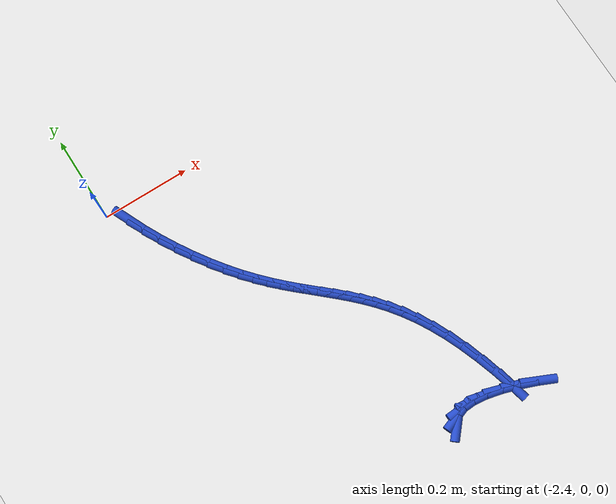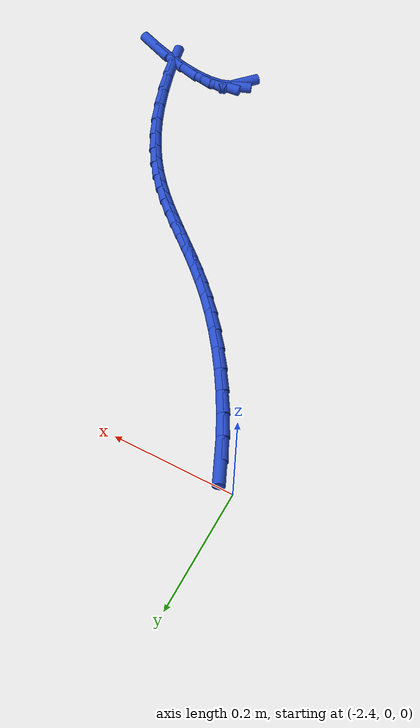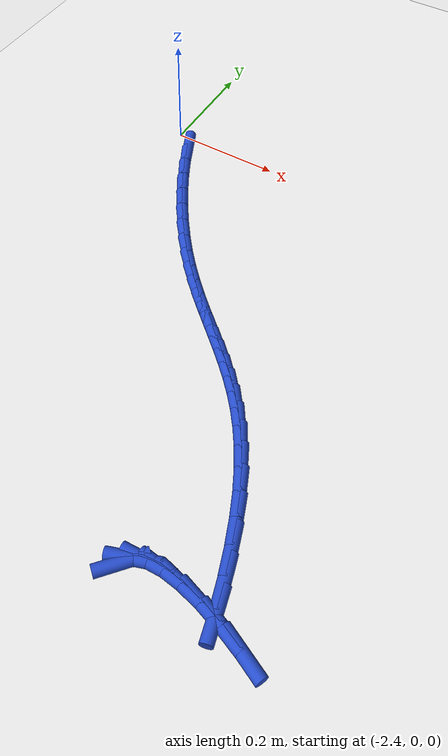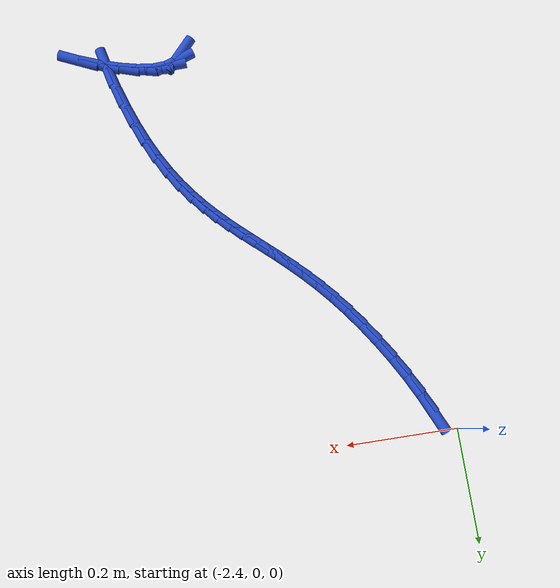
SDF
<sdf version="1.6">
 <world name="default">
  <model name="ground_plane">
   <static>1</static>
   <link name="link">
    <collision name="collision">
     <geometry><plane><normal>0 0 1</normal><size>100 100</size></plane></geometry>
     <surface><friction><ode><mu>100</mu><mu2>50</mu2></ode></friction></surface>
    </collision>
    <visual name="visual">
     <cast_shadows>0</cast_shadows>
     <geometry><plane><normal>0 0 1</normal><size>100 100</size></plane></geometry>
     <material>
      <script><uri>file://media/materials/scripts/gazebo.material</uri><name>Gazebo/WhiteGlow</name></script>
     </material>
    </visual>
   </link>
  </model>
  <model name="line">
   <link name="link_141">
    <pose>-2.361597242103168 -0.03344949519410707 0.01 0 1.57 -1.1474582868357774</pose>
    <collision name="collision">
     <geometry><cylinder><radius>0.01</radius><length>0.08</length></cylinder></geometry>
    </collision>
    <visual name="visual">
     <material>
      <script><name>Gazebo/Blue</name><uri>file://media/materials/scripts/gazebo.material</uri></script>
     </material>
     <geometry><cylinder><radius>0.01</radius><length>0.08</length></cylinder></geometry>
    </visual>
   </link>
   <link name="link_142">
    <pose>-2.3453179037874765 -0.06957905302039295 0.01 0 1.57 -1.1001752725665497</pose>
    <collision name="collision">
     <geometry><cylinder><radius>0.01</radius><length>0.08</length></cylinder></geometry>
    </collision>
    <visual name="visual">
     <material>
      <script><name>Gazebo/Blue</name><uri>file://media/materials/scripts/gazebo.material</uri></script>
     </material>
     <geometry><cylinder><radius>0.01</radius><length>0.08</length></cylinder></geometry>
    </visual>
   </link>
   <link name="link_143">
    <pose>-2.327036588795942 -0.10551302193618992 0.01 0 1.57 -1.0573141743358325</pose>
    <collision name="collision">
     <geometry><cylinder><radius>0.01</radius><length>0.08</length></cylinder></geometry>
    </collision>
    <visual name="visual">
     <material>
      <script><name>Gazebo/Blue</name><uri>file://media/materials/scripts/gazebo.material</uri></script>
     </material>
     <geometry><cylinder><radius>0.01</radius><length>0.08</length></cylinder></geometry>
    </visual>
   </link>
   <link name="link_144">
    <pose>-2.3071366077376902 -0.1408004733244182 0.01 0 1.57 -1.017121418431173</pose>
    <collision name="collision">
     <geometry><cylinder><radius>0.01</radius><length>0.08</length></cylinder></geometry>
    </collision>
    <visual name="visual">
     <material>
      <script><name>Gazebo/Blue</name><uri>file://media/materials/scripts/gazebo.material</uri></script>
     </material>
     <geometry><cylinder><radius>0.01</radius><length>0.08</length></cylinder></geometry>
    </visual>
   </link>
   <link name="link_145">
    <pose>-2.286001271221849 -0.17499047856799813 0.01 0 1.57 -0.9780095118017871</pose>
    <collision name="collision">
     <geometry><cylinder><radius>0.01</radius><length>0.08</length></cylinder></geometry>
    </collision>
    <visual name="visual">
     <material>
      <script><name>Gazebo/Blue</name><uri>file://media/materials/scripts/gazebo.material</uri></script>
     </material>
     <geometry><cylinder><radius>0.01</radius><length>0.08</length></cylinder></geometry>
    </visual>
   </link>
   <link name="link_146">
    <pose>-2.2640138898575453 -0.20763210904985108 0.01 0 1.57 -0.9383642870681426</pose>
    <collision name="collision">
     <geometry><cylinder><radius>0.01</radius><length>0.08</length></cylinder></geometry>
    </collision>
    <visual name="visual">
     <material>
      <script><name>Gazebo/Blue</name><uri>file://media/materials/scripts/gazebo.material</uri></script>
     </material>
     <geometry><cylinder><radius>0.01</radius><length>0.08</length></cylinder></geometry>
    </visual>
   </link>
   <link name="link_147">
    <pose>-2.241557774253907 -0.23827443615289504 0.01 0 1.57 -0.8963390176403613</pose>
    <collision name="collision">
     <geometry><cylinder><radius>0.01</radius><length>0.08</length></cylinder></geometry>
    </collision>
    <visual name="visual">
     <material>
      <script><name>Gazebo/Blue</name><uri>file://media/materials/scripts/gazebo.material</uri></script>
     </material>
     <geometry><cylinder><radius>0.01</radius><length>0.08</length></cylinder></geometry>
    </visual>
   </link>
   <link name="link_148">
    <pose>-2.2190152404133205 -0.2664689933981256 0.01 0 1.57 -0.8524454837499781</pose>
    <collision name="collision">
     <geometry><cylinder><radius>0.01</radius><length>0.08</length></cylinder></geometry>
    </collision>
    <visual name="visual">
     <material>
      <script><name>Gazebo/Blue</name><uri>file://media/materials/scripts/gazebo.material</uri></script>
     </material>
     <geometry><cylinder><radius>0.01</radius><length>0.08</length></cylinder></geometry>
    </visual>
   </link>
   <link name="link_149">
    <pose>-2.196655199218205 -0.29204804743747964 0.01 0 1.57 -0.8119396444832158</pose>
    <collision name="collision">
     <geometry><cylinder><radius>0.01</radius><length>0.08</length></cylinder></geometry>
    </collision>
    <visual name="visual">
     <material>
      <script><name>Gazebo/Blue</name><uri>file://media/materials/scripts/gazebo.material</uri></script>
     </material>
     <geometry><cylinder><radius>0.01</radius><length>0.08</length></cylinder></geometry>
    </visual>
   </link>
   <link name="link_150">
    <pose>-2.1745299505037288 -0.31538008319508964 0.01 0 1.57 -0.7773600626780643</pose>
    <collision name="collision">
     <geometry><cylinder><radius>0.01</radius><length>0.08</length></cylinder></geometry>
    </collision>
    <visual name="visual">
     <material>
      <script><name>Gazebo/Blue</name><uri>file://media/materials/scripts/gazebo.material</uri></script>
     </material>
     <geometry><cylinder><radius>0.01</radius><length>0.08</length></cylinder></geometry>
    </visual>
   </link>
   <link name="link_151">
    <pose>-2.1526674072772214 -0.33689395491999397 0.01 0 1.57 -0.7507002305579493</pose>
    <collision name="collision">
     <geometry><cylinder><radius>0.01</radius><length>0.08</length></cylinder></geometry>
    </collision>
    <visual name="visual">
     <material>
      <script><name>Gazebo/Blue</name><uri>file://media/materials/scripts/gazebo.material</uri></script>
     </material>
     <geometry><cylinder><radius>0.01</radius><length>0.08</length></cylinder></geometry>
    </visual>
   </link>
   <link name="link_152">
    <pose>-2.1310954825460118 -0.3570185168612312 0.01 0 1.57 -0.7337515036205322</pose>
    <collision name="collision">
     <geometry><cylinder><radius>0.01</radius><length>0.08</length></cylinder></geometry>
    </collision>
    <visual name="visual">
     <material>
      <script><name>Gazebo/Blue</name><uri>file://media/materials/scripts/gazebo.material</uri></script>
     </material>
     <geometry><cylinder><radius>0.01</radius><length>0.08</length></cylinder></geometry>
    </visual>
   </link>
   <link name="link_153">
    <pose>-2.109842089317429 -0.3761826232678397 0.01 0 1.57 -0.7279380904987738</pose>
    <collision name="collision">
     <geometry><cylinder><radius>0.01</radius><length>0.08</length></cylinder></geometry>
    </collision>
    <visual name="visual">
     <material>
      <script><name>Gazebo/Blue</name><uri>file://media/materials/scripts/gazebo.material</uri></script>
     </material>
     <geometry><cylinder><radius>0.01</radius><length>0.08</length></cylinder></geometry>
    </visual>
   </link>
   <link name="link_154">
    <pose>-2.0889351405988026 -0.394815128388858 0.01 0 1.57 -0.7341702972030717</pose>
    <collision name="collision">
     <geometry><cylinder><radius>0.01</radius><length>0.08</length></cylinder></geometry>
    </collision>
    <visual name="visual">
     <material>
      <script><name>Gazebo/Blue</name><uri>file://media/materials/scripts/gazebo.material</uri></script>
     </material>
     <geometry><cylinder><radius>0.01</radius><length>0.08</length></cylinder></geometry>
    </visual>
   </link>
   <link name="link_155">
    <pose>-2.068402549397461 -0.4133448864733251 0.01 0 1.57 -0.7527198783938155</pose>
    <collision name="collision">
     <geometry><cylinder><radius>0.01</radius><length>0.08</length></cylinder></geometry>
    </collision>
    <visual name="visual">
     <material>
      <script><name>Gazebo/Blue</name><uri>file://media/materials/scripts/gazebo.material</uri></script>
     </material>
     <geometry><cylinder><radius>0.01</radius><length>0.08</length></cylinder></geometry>
    </visual>
   </link>
   <link name="link_156">
    <pose>-2.048272228720735 -0.4322007517702785 0.01 0 1.57 -0.7831262722053155</pose>
    <collision name="collision">
     <geometry><cylinder><radius>0.01</radius><length>0.08</length></cylinder></geometry>
    </collision>
    <visual name="visual">
     <material>
      <script><name>Gazebo/Blue</name><uri>file://media/materials/scripts/gazebo.material</uri></script>
     </material>
     <geometry><cylinder><radius>0.01</radius><length>0.08</length></cylinder></geometry>
    </visual>
   </link>
   <link name="link_157">
    <pose>-2.028572091575952 -0.4518115785287571 0.01 0 1.57 -0.8241582242545928</pose>
    <collision name="collision">
     <geometry><cylinder><radius>0.01</radius><length>0.08</length></cylinder></geometry>
    </collision>
    <visual name="visual">
     <material>
      <script><name>Gazebo/Blue</name><uri>file://media/materials/scripts/gazebo.material</uri></script>
     </material>
     <geometry><cylinder><radius>0.01</radius><length>0.08</length></cylinder></geometry>
    </visual>
   </link>
   <link name="link_158">
    <pose>-2.0093300509704424 -0.4726062209977993 0.01 0 1.57 -0.8738688709032765</pose>
    <collision name="collision">
     <geometry><cylinder><radius>0.01</radius><length>0.08</length></cylinder></geometry>
    </collision>
    <visual name="visual">
     <material>
      <script><name>Gazebo/Blue</name><uri>file://media/materials/scripts/gazebo.material</uri></script>
     </material>
     <geometry><cylinder><radius>0.01</radius><length>0.08</length></cylinder></geometry>
    </visual>
   </link>
   <link name="link_159">
    <pose>-1.9905740199115343 -0.49501353342644366 0.01 0 1.57 -0.9297740468293593</pose>
    <collision name="collision">
     <geometry><cylinder><radius>0.01</radius><length>0.08</length></cylinder></geometry>
    </collision>
    <visual name="visual">
     <material>
      <script><name>Gazebo/Blue</name><uri>file://media/materials/scripts/gazebo.material</uri></script>
     </material>
     <geometry><cylinder><radius>0.01</radius><length>0.08</length></cylinder></geometry>
    </visual>
   </link>
   <link name="link_160">
    <pose>-1.9723319114065563 -0.5194623700637286 0.01 0 1.57 -0.9891436968245524</pose>
    <collision name="collision">
     <geometry><cylinder><radius>0.01</radius><length>0.08</length></cylinder></geometry>
    </collision>
    <visual name="visual">
     <material>
      <script><name>Gazebo/Blue</name><uri>file://media/materials/scripts/gazebo.material</uri></script>
     </material>
     <geometry><cylinder><radius>0.01</radius><length>0.08</length></cylinder></geometry>
    </visual>
   </link>
   <link name="link_161">
    <pose>-1.9546316384628395 -0.5463815851586927 0.01 0 1.57 -1.049342275886836</pose>
    <collision name="collision">
     <geometry><cylinder><radius>0.01</radius><length>0.08</length></cylinder></geometry>
    </collision>
    <visual name="visual">
     <material>
      <script><name>Gazebo/Blue</name><uri>file://media/materials/scripts/gazebo.material</uri></script>
     </material>
     <geometry><cylinder><radius>0.01</radius><length>0.08</length></cylinder></geometry>
    </visual>
   </link>
   <link name="link_162">
    <pose>-1.9375011140877114 -0.5762000329603744 0.01 0 1.57 -1.108124367945198</pose>
    <collision name="collision">
     <geometry><cylinder><radius>0.01</radius><length>0.08</length></cylinder></geometry>
    </collision>
    <visual name="visual">
     <material>
      <script><name>Gazebo/Blue</name><uri>file://media/materials/scripts/gazebo.material</uri></script>
     </material>
     <geometry><cylinder><radius>0.01</radius><length>0.08</length></cylinder></geometry>
    </visual>
   </link>
   <link name="link_163">
    <pose>-1.9209682512885018 -0.609346567717812 0.01 0 1.57 -1.1636205677359313</pose>
    <collision name="collision">
     <geometry><cylinder><radius>0.01</radius><length>0.08</length></cylinder></geometry>
    </collision>
    <visual name="visual">
     <material>
      <script><name>Gazebo/Blue</name><uri>file://media/materials/scripts/gazebo.material</uri></script>
     </material>
     <geometry><cylinder><radius>0.01</radius><length>0.08</length></cylinder></geometry>
    </visual>
   </link>
   <link name="link_164">
    <pose>-1.9050691208145027 -0.6462117606781879 0.01 0 1.57 -1.211950871740123</pose>
    <collision name="collision">
     <geometry><cylinder><radius>0.01</radius><length>0.08</length></cylinder></geometry>
    </collision>
    <visual name="visual">
     <material>
      <script><name>Gazebo/Blue</name><uri>file://media/materials/scripts/gazebo.material</uri></script>
     </material>
     <geometry><cylinder><radius>0.01</radius><length>0.08</length></cylinder></geometry>
    </visual>
   </link>
   <link name="link_165">
    <pose>-1.8900233941286684 -0.6863245737741163 0.01 0 1.57 -1.2537944682180027</pose>
    <collision name="collision">
     <geometry><cylinder><radius>0.01</radius><length>0.08</length></cylinder></geometry>
    </collision>
    <visual name="visual">
     <material>
      <script><name>Gazebo/Blue</name><uri>file://media/materials/scripts/gazebo.material</uri></script>
     </material>
     <geometry><cylinder><radius>0.01</radius><length>0.08</length></cylinder></geometry>
    </visual>
   </link>
   <link name="link_166">
    <pose>-1.8762321334763885 -0.7283627304837917 0.01 0 1.57 -1.2934700699453574</pose>
    <collision name="collision">
     <geometry><cylinder><radius>0.01</radius><length>0.08</length></cylinder></geometry>
    </collision>
    <visual name="visual">
     <material>
      <script><name>Gazebo/Blue</name><uri>file://media/materials/scripts/gazebo.material</uri></script>
     </material>
     <geometry><cylinder><radius>0.01</radius><length>0.08</length></cylinder></geometry>
    </visual>
   </link>
   <link name="link_167">
    <pose>-1.8641041168384567 -0.7709677455509301 0.01 0 1.57 -1.3347814620165568</pose>
    <collision name="collision">
     <geometry><cylinder><radius>0.01</radius><length>0.08</length></cylinder></geometry>
    </collision>
    <visual name="visual">
     <material>
      <script><name>Gazebo/Blue</name><uri>file://media/materials/scripts/gazebo.material</uri></script>
     </material>
     <geometry><cylinder><radius>0.01</radius><length>0.08</length></cylinder></geometry>
    </visual>
   </link>
   <link name="link_183">
    <pose>-2.004766942849004 -0.7762199528176977 0.01 0 1.57 0.8552921046854425</pose>
    <collision name="collision">
     <geometry><cylinder><radius>0.01</radius><length>0.08</length></cylinder></geometry>
    </collision>
    <visual name="visual">
     <material>
      <script><name>Gazebo/Blue</name><uri>file://media/materials/scripts/gazebo.material</uri></script>
     </material>
     <geometry><cylinder><radius>0.01</radius><length>0.08</length></cylinder></geometry>
    </visual>
   </link>
   <link name="link_184">
    <pose>-1.9939610857966343 -0.7637872082406426 0.01 0 1.57 0.34781198103804883</pose>
    <collision name="collision">
     <geometry><cylinder><radius>0.01</radius><length>0.08</length></cylinder></geometry>
    </collision>
    <visual name="visual">
     <material>
      <script><name>Gazebo/Blue</name><uri>file://media/materials/scripts/gazebo.material</uri></script>
     </material>
     <geometry><cylinder><radius>0.01</radius><length>0.08</length></cylinder></geometry>
    </visual>
   </link>
   <link name="link_185">
    <pose>-1.9757347303456505 -0.7571792265515828 0.01 0 1.57 0.05212089572931043</pose>
    <collision name="collision">
     <geometry><cylinder><radius>0.01</radius><length>0.08</length></cylinder></geometry>
    </collision>
    <visual name="visual">
     <material>
      <script><name>Gazebo/Blue</name><uri>file://media/materials/scripts/gazebo.material</uri></script>
     </material>
     <geometry><cylinder><radius>0.01</radius><length>0.08</length></cylinder></geometry>
    </visual>
   </link>
   <link name="link_186">
    <pose>-1.9511916094786312 -0.7558988574863218 0.01 0 1.57 -0.11874490951916278</pose>
    <collision name="collision">
     <geometry><cylinder><radius>0.01</radius><length>0.08</length></cylinder></geometry>
    </collision>
    <visual name="visual">
     <material>
      <script><name>Gazebo/Blue</name><uri>file://media/materials/scripts/gazebo.material</uri></script>
     </material>
     <geometry><cylinder><radius>0.01</radius><length>0.08</length></cylinder></geometry>
    </visual>
   </link>
   <link name="link_187">
    <pose>-1.9214354561781557 -0.7594489507806631 0.01 0 1.57 -0.2287128567179746</pose>
    <collision name="collision">
     <geometry><cylinder><radius>0.01</radius><length>0.08</length></cylinder></geometry>
    </collision>
    <visual name="visual">
     <material>
      <script><name>Gazebo/Blue</name><uri>file://media/materials/scripts/gazebo.material</uri></script>
     </material>
     <geometry><cylinder><radius>0.01</radius><length>0.08</length></cylinder></geometry>
    </visual>
   </link>
   <link name="link_188">
    <pose>-1.887570003426802 -0.7673323561704105 0.01 0 1.57 -0.30775424111142613</pose>
    <collision name="collision">
     <geometry><cylinder><radius>0.01</radius><length>0.08</length></cylinder></geometry>
    </collision>
    <visual name="visual">
     <material>
      <script><name>Gazebo/Blue</name><uri>file://media/materials/scripts/gazebo.material</uri></script>
     </material>
     <geometry><cylinder><radius>0.01</radius><length>0.08</length></cylinder></geometry>
    </visual>
   </link>
   <link name="link_189">
    <pose>-1.850698984207149 -0.7790519233913668 0.01 0 1.57 -0.3704486879671568</pose>
    <collision name="collision">
     <geometry><cylinder><radius>0.01</radius><length>0.08</length></cylinder></geometry>
    </collision>
    <visual name="visual">
     <material>
      <script><name>Gazebo/Blue</name><uri>file://media/materials/scripts/gazebo.material</uri></script>
     </material>
     <geometry><cylinder><radius>0.01</radius><length>0.08</length></cylinder></geometry>
    </visual>
   </link>
   <link name="link_190">
    <pose>-1.8119261315017745 -0.7941105021793367 0.01 0 1.57 -0.4248173647971211</pose>
    <collision name="collision">
     <geometry><cylinder><radius>0.01</radius><length>0.08</length></cylinder></geometry>
    </collision>
    <visual name="visual">
     <material>
      <script><name>Gazebo/Blue</name><uri>file://media/materials/scripts/gazebo.material</uri></script>
     </material>
     <geometry><cylinder><radius>0.01</radius><length>0.08</length></cylinder></geometry>
    </visual>
   </link>
  </model>
 </world>
</sdf>
